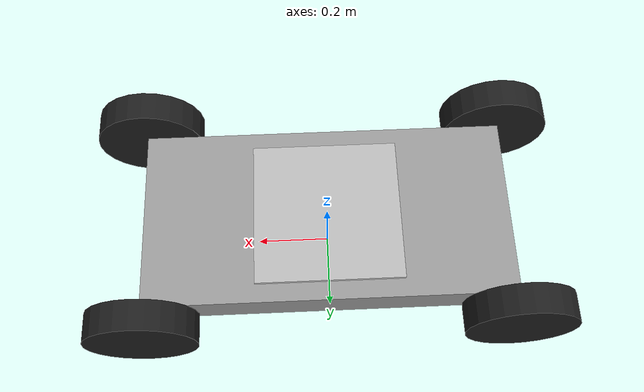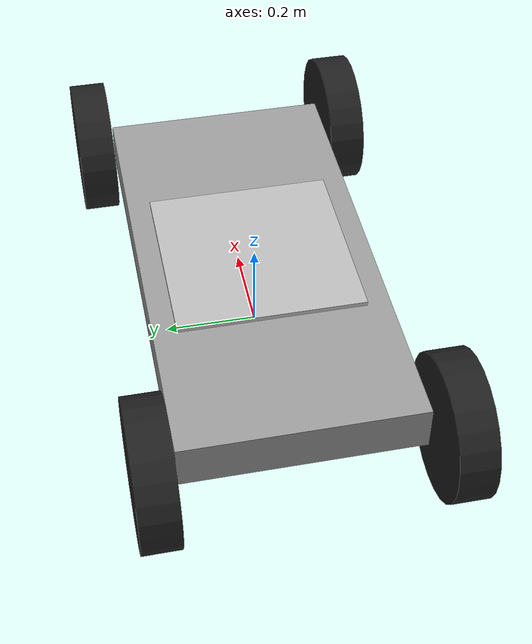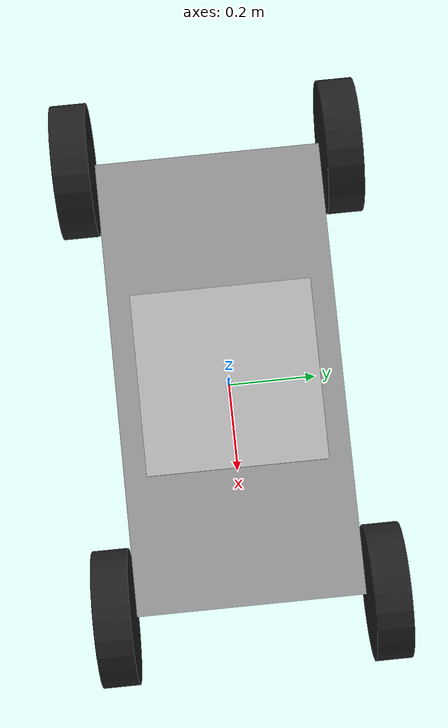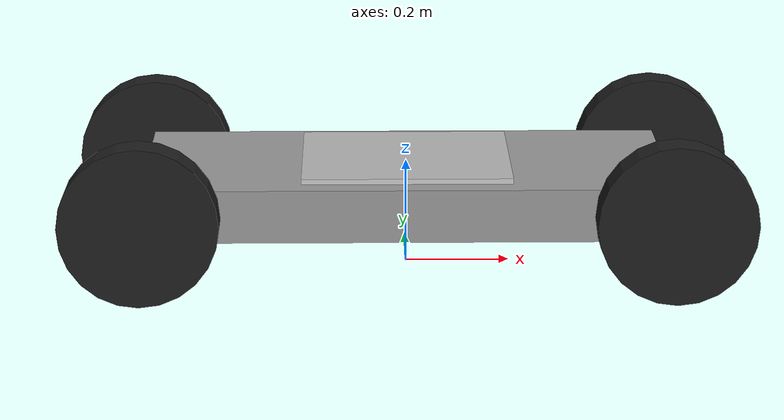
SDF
<?xml version="1.0" ?>
<sdf version="1.5">
  <model name="marker_car">
    <link name="chassis">
      <pose>0 0 0.15  0 0 0</pose>
      <inertial>
        <pose>0.1 0 0  0 0 0</pose>
        <mass>10</mass>
        <inertia>
          <ixx>0.21666666666666667</ixx>
          <iyy>0.8416666666666667</iyy>
          <izz>1.0416666666666667</izz>
          <ixy>0</ixy>
          <ixz>0</ixz>
          <iyz>0</iyz>
        </inertia>
      </inertial>
      <collision name="collision">
        <geometry>
          <box>
            <size>1.0 0.5 0.1</size>
          </box>
        </geometry>
      </collision>
      <visual name="visual">
        <geometry>
          <box>
            <size>1.0 0.5 0.1</size>
          </box>
        </geometry>
        <material>
          <script>
            <uri>file://media/materials/scripts/gazebo.material</uri>
            <name>Gazebo/Grey</name>
          </script>
        </material>
      </visual>
    </link>

    <link name="wheel_front_left">
      <pose>0.5 0.298 0.15  -1.5707963267948966 0 0</pose>
      <inertial>
        <mass>0.5</mass>
        <inertia>
          <ixx>0.0030791666666666667</ixx>
          <iyy>0.0030791666666666667</iyy>
          <izz>0.005625</izz>
          <ixy>0</ixy>
          <ixz>0</ixz>
          <iyz>0</iyz>
        </inertia>
      </inertial>
      <collision name="collision">
        <geometry>
          <cylinder>
            <radius>0.15</radius>
            <length>0.08</length>
          </cylinder>
        </geometry>
      </collision>
      <visual name="visual">
        <geometry>
          <cylinder>
            <radius>0.15</radius>
            <length>0.08</length>
          </cylinder>
        </geometry>
        <material>
          <script>
            <uri>file://media/materials/scripts/gazebo.material</uri>
            <name>Gazebo/Black</name>
          </script>
        </material>
      </visual>
    </link>
    <joint name="wheel_front_left_spin" type="revolute">
      <parent>chassis</parent>
      <child>wheel_front_left</child>
      <axis>
        <xyz>0 0 1</xyz>
      </axis>
    </joint>

    <link name="wheel_front_right">
      <pose>0.5 -0.298 0.15  -1.5707963267948966 0 0</pose>
      <inertial>
        <mass>0.5</mass>
        <inertia>
          <ixx>0.0030791666666666667</ixx>
          <iyy>0.0030791666666666667</iyy>
          <izz>0.005625</izz>
          <ixy>0</ixy>
          <ixz>0</ixz>
          <iyz>0</iyz>
        </inertia>
      </inertial>
      <collision name="collision">
        <geometry>
          <cylinder>
            <radius>0.15</radius>
            <length>0.08</length>
          </cylinder>
        </geometry>
      </collision>
      <visual name="visual">
        <geometry>
          <cylinder>
            <radius>0.15</radius>
            <length>0.08</length>
          </cylinder>
        </geometry>
        <material>
          <script>
            <uri>file://media/materials/scripts/gazebo.material</uri>
            <name>Gazebo/Black</name>
          </script>
        </material>
      </visual>
    </link>
    <joint name="wheel_front_right_spin" type="revolute">
      <parent>chassis</parent>
      <child>wheel_front_right</child>
      <axis>
        <xyz>0 0 1</xyz>
      </axis>
    </joint>

    <link name="wheel_rear_left">
      <pose>-0.5 0.298 0.15  -1.5707963267948966 0 0</pose>
      <inertial>
        <mass>0.5</mass>
        <inertia>
          <ixx>0.0030791666666666667</ixx>
          <iyy>0.0030791666666666667</iyy>
          <izz>0.005625</izz>
          <ixy>0</ixy>
          <ixz>0</ixz>
          <iyz>0</iyz>
        </inertia>
      </inertial>
      <collision name="collision">
        <geometry>
          <cylinder>
            <radius>0.15</radius>
            <length>0.08</length>
          </cylinder>
        </geometry>
      </collision>
      <visual name="visual">
        <geometry>
          <cylinder>
            <radius>0.15</radius>
            <length>0.08</length>
          </cylinder>
        </geometry>
        <material>
          <script>
            <uri>file://media/materials/scripts/gazebo.material</uri>
            <name>Gazebo/Black</name>
          </script>
        </material>
      </visual>
    </link>
    <joint name="wheel_rear_left_spin" type="revolute">
      <parent>chassis</parent>
      <child>wheel_rear_left</child>
      <axis>
        <xyz>0 0 1</xyz>
      </axis>
    </joint>

    <link name="wheel_rear_right">
      <pose>-0.5 -0.298 0.15  -1.5707963267948966 0 0</pose>
      <inertial>
        <mass>0.5</mass>
        <inertia>
          <ixx>0.0030791666666666667</ixx>
          <iyy>0.0030791666666666667</iyy>
          <izz>0.005625</izz>
          <ixy>0</ixy>
          <ixz>0</ixz>
          <iyz>0</iyz>
        </inertia>
      </inertial>
      <collision name="collision">
        <geometry>
          <cylinder>
            <radius>0.15</radius>
            <length>0.08</length>
          </cylinder>
        </geometry>
      </collision>
      <visual name="visual">
        <geometry>
          <cylinder>
            <radius>0.15</radius>
            <length>0.08</length>
          </cylinder>
        </geometry>
        <material>
          <script>
            <uri>file://media/materials/scripts/gazebo.material</uri>
            <name>Gazebo/Black</name>
          </script>
        </material>
      </visual>
    </link>
    <joint name="wheel_rear_right_spin" type="revolute">
      <parent>chassis</parent>
      <child>wheel_rear_right</child>
      <axis>
        <xyz>0 0 1</xyz>
      </axis>
    </joint>

    <link name="target_link">
      <pose>0 0 0.2 0 0 0</pose>
      <collision name="collision">
        <geometry>
          <box>
            <size>0.2 0.2 0.01</size>
          </box>
        </geometry>
      </collision>
      <visual name="visual">
        <geometry>
          <mesh>
            <uri>model://marker_car/meshes/marker.dae</uri>
          </mesh>
        </geometry>
      </visual>
    </link>
    <joint name="target_joint" type="fixed">
      <parent>chassis</parent>
      <child>target_link</child>
      <axis>
        <xyz>0 0 0.12</xyz>
      </axis>
    </joint>

  </model>
</sdf>
